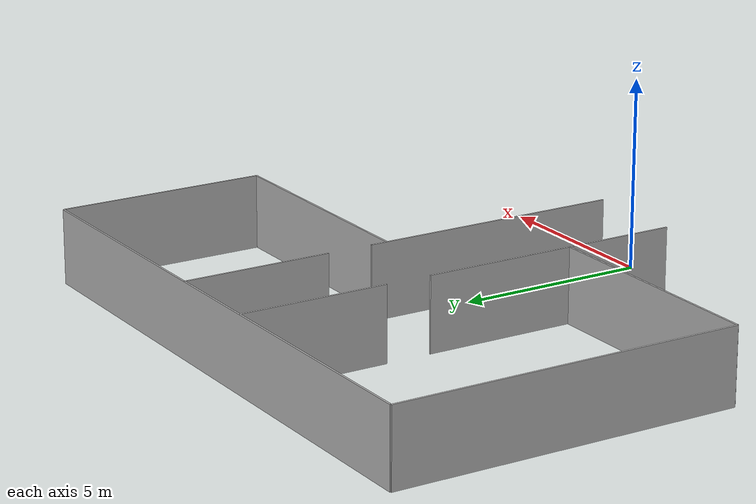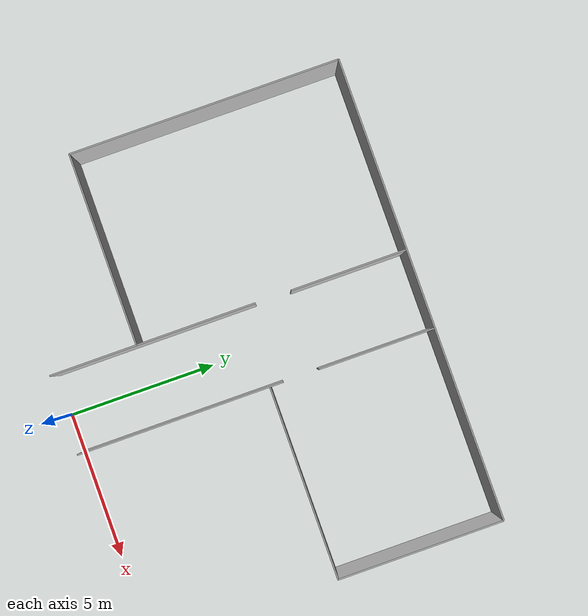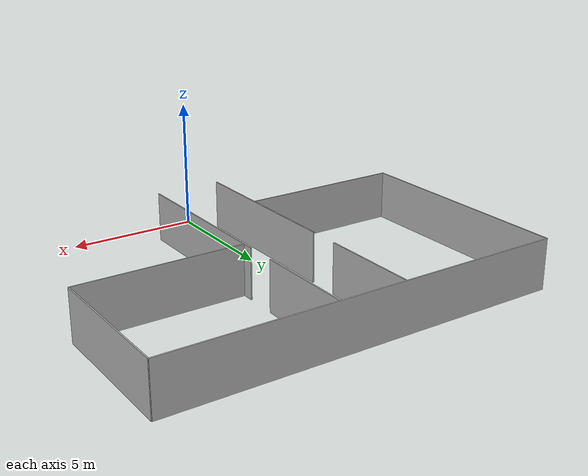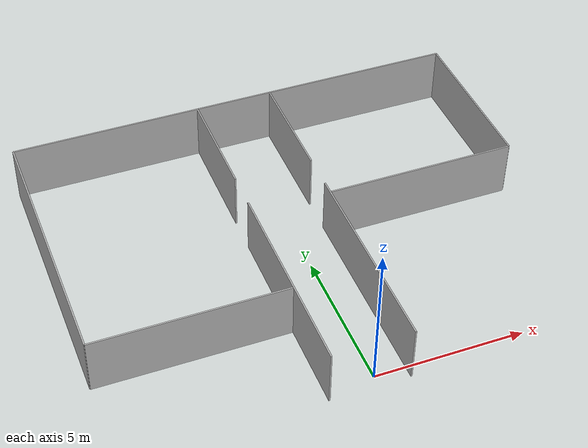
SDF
<?xml version='1.0'?>
<sdf version="1.4">
<model name="hri_apartment">
  <pose>0 0 0 0 0 0</pose>
  <static>true</static>

    <link name="wall1">
      <pose>1.2827    3.5115    .5000 0 0 0</pose>
      <inertial>
        <mass>1000.0</mass>
        <inertia> <!-- interias are tricky to compute -->
          <!-- http://answers.gazebosim.org/question/4372/the-inertia-matrix-explained/ -->
          <ixx>0.083</ixx>       <!-- for a box: ixx = 0.083 * mass * (y*y + z*z) -->
          <ixy>0.0</ixy>         <!-- for a box: ixy = 0 -->
          <ixz>0.0</ixz>         <!-- for a box: ixz = 0 -->
          <iyy>0.083</iyy>       <!-- for a box: iyy = 0.083 * mass * (x*x + z*z) -->
          <iyz>0.0</iyz>         <!-- for a box: iyz = 0 -->
          <izz>0.083</izz>       <!-- for a box: izz = 0.083 * mass * (x*x + y*y) -->
        </inertia>
      </inertial>
      <collision name="collision">
        <geometry>
          <box>
            <size>0.0500    7.0231    2.0000</size>
          </box>
        </geometry>
      </collision>
      <visual name="visual">
        <geometry>
          <box>
            <size>0.0500    7.0231    2.0000</size>
          </box>
        </geometry>
      </visual>
    </link>

    <link name="wall2">
      <pose>-1.4097    3.5115    0.5000 0 0 0</pose>
      <inertial>
        <mass>1000.0</mass>
        <inertia> <!-- interias are tricky to compute -->
          <!-- http://answers.gazebosim.org/question/4372/the-inertia-matrix-explained/ -->
          <ixx>0.083</ixx>       <!-- for a box: ixx = 0.083 * mass * (y*y + z*z) -->
          <ixy>0.0</ixy>         <!-- for a box: ixy = 0 -->
          <ixz>0.0</ixz>         <!-- for a box: ixz = 0 -->
          <iyy>0.083</iyy>       <!-- for a box: iyy = 0.083 * mass * (x*x + z*z) -->
          <iyz>0.0</iyz>         <!-- for a box: iyz = 0 -->
          <izz>0.083</izz>       <!-- for a box: izz = 0.083 * mass * (x*x + y*y) -->
        </inertia>
      </inertial>
      <collision name="collision">
        <geometry>
          <box>
            <size>0.0500    7.0231    2.0000</size>
          </box>
        </geometry>
      </collision>
      <visual name="visual">
        <geometry>
          <box>
            <size>0.0500    7.0231    2.0000</size>
          </box>
        </geometry>
      </visual>
    </link>

    <link name="wall3">
      <pose>1.2827   10.2235    0.5000 0 0 0</pose>
      <inertial>
        <mass>1000.0</mass>
        <inertia> <!-- interias are tricky to compute -->
          <!-- http://answers.gazebosim.org/question/4372/the-inertia-matrix-explained/ -->
          <ixx>0.083</ixx>       <!-- for a box: ixx = 0.083 * mass * (y*y + z*z) -->
          <ixy>0.0</ixy>         <!-- for a box: ixy = 0 -->
          <ixz>0.0</ixz>         <!-- for a box: ixz = 0 -->
          <iyy>0.083</iyy>       <!-- for a box: iyy = 0.083 * mass * (x*x + z*z) -->
          <iyz>0.0</iyz>         <!-- for a box: iyz = 0 -->
          <izz>0.083</izz>       <!-- for a box: izz = 0.083 * mass * (x*x + y*y) -->
        </inertia>
      </inertial>
      <collision name="collision">
        <geometry>
          <box>
            <size>0.0500    3.9624    2.0000</size>
          </box>
        </geometry>
      </collision>
      <visual name="visual">
        <geometry>
          <box>
            <size>0.0500    3.9624    2.0000</size>
          </box>
        </geometry>
      </visual>
    </link>

    <link name="wall4">
      <pose>-1.4097   10.2235    0.5000 0 0 0</pose>
      <inertial>
        <mass>1000.0</mass>
        <inertia> <!-- interias are tricky to compute -->
          <!-- http://answers.gazebosim.org/question/4372/the-inertia-matrix-explained/ -->
          <ixx>0.083</ixx>       <!-- for a box: ixx = 0.083 * mass * (y*y + z*z) -->
          <ixy>0.0</ixy>         <!-- for a box: ixy = 0 -->
          <ixz>0.0</ixz>         <!-- for a box: ixz = 0 -->
          <iyy>0.083</iyy>       <!-- for a box: iyy = 0.083 * mass * (x*x + z*z) -->
          <iyz>0.0</iyz>         <!-- for a box: iyz = 0 -->
          <izz>0.083</izz>       <!-- for a box: izz = 0.083 * mass * (x*x + y*y) -->
        </inertia>
      </inertial>
      <collision name="collision">
        <geometry>
          <box>
            <size>0.0500    3.9624    2.0000</size>
          </box>
        </geometry>
      </collision>
      <visual name="visual">
        <geometry>
          <box>
            <size>0.0500    3.9624    2.0000</size>
          </box>
        </geometry>
      </visual>
    </link>

    <link name="wall5">
      <pose>-0.0635   12.2047    0.5000 0 0 0</pose>
      <inertial>
        <mass>1000.0</mass>
        <inertia> <!-- interias are tricky to compute -->
          <!-- http://answers.gazebosim.org/question/4372/the-inertia-matrix-explained/ -->
          <ixx>0.083</ixx>       <!-- for a box: ixx = 0.083 * mass * (y*y + z*z) -->
          <ixy>0.0</ixy>         <!-- for a box: ixy = 0 -->
          <ixz>0.0</ixz>         <!-- for a box: ixz = 0 -->
          <iyy>0.083</iyy>       <!-- for a box: iyy = 0.083 * mass * (x*x + z*z) -->
          <iyz>0.0</iyz>         <!-- for a box: iyz = 0 -->
          <izz>0.083</izz>       <!-- for a box: izz = 0.083 * mass * (x*x + y*y) -->
        </inertia>
      </inertial>
      <collision name="collision">
        <geometry>
          <box>
            <size>15.7988    0.0500    2.0000</size>
          </box>
        </geometry>
      </collision>
      <visual name="visual">
        <geometry>
          <box>
            <size>15.7988    0.0500    2.0000</size>
          </box>
        </geometry>
      </visual>
    </link>

    <link name="wall6">
      <pose>-7.9629    7.5819    0.5000 0 0 0</pose>
      <inertial>
        <mass>1000.0</mass>
        <inertia> <!-- interias are tricky to compute -->
          <!-- http://answers.gazebosim.org/question/4372/the-inertia-matrix-explained/ -->
          <ixx>0.083</ixx>       <!-- for a box: ixx = 0.083 * mass * (y*y + z*z) -->
          <ixy>0.0</ixy>         <!-- for a box: ixy = 0 -->
          <ixz>0.0</ixz>         <!-- for a box: ixz = 0 -->
          <iyy>0.083</iyy>       <!-- for a box: iyy = 0.083 * mass * (x*x + z*z) -->
          <iyz>0.0</iyz>         <!-- for a box: iyz = 0 -->
          <izz>0.083</izz>       <!-- for a box: izz = 0.083 * mass * (x*x + y*y) -->
        </inertia>
      </inertial>
      <collision name="collision">
        <geometry>
          <box>
            <size>0.0500    9.2456    2.0000</size>
          </box>
        </geometry>
      </collision>
      <visual name="visual">
        <geometry>
          <box>
            <size>0.0500    9.2456    2.0000</size>
          </box>
        </geometry>
      </visual>
    </link>

    <link name="wall7">
      <pose>-4.6863    2.9591    0.5000 0 0 0</pose>
      <inertial>
        <mass>1000.0</mass>
        <inertia> <!-- interias are tricky to compute -->
          <!-- http://answers.gazebosim.org/question/4372/the-inertia-matrix-explained/ -->
          <ixx>0.083</ixx>       <!-- for a box: ixx = 0.083 * mass * (y*y + z*z) -->
          <ixy>0.0</ixy>         <!-- for a box: ixy = 0 -->
          <ixz>0.0</ixz>         <!-- for a box: ixz = 0 -->
          <iyy>0.083</iyy>       <!-- for a box: iyy = 0.083 * mass * (x*x + z*z) -->
          <iyz>0.0</iyz>         <!-- for a box: iyz = 0 -->
          <izz>0.083</izz>       <!-- for a box: izz = 0.083 * mass * (x*x + y*y) -->
        </inertia>
      </inertial>
      <collision name="collision">
        <geometry>
          <box>
            <size>6.5532    0.0500    2.0000</size>
          </box>
        </geometry>
      </collision>
      <visual name="visual">
        <geometry>
          <box>
            <size>6.5532    0.0500    2.0000</size>
          </box>
        </geometry>
      </visual>
    </link>

    <link name="wall8">
      <pose>4.5593    6.5659    0.5000 0 0 0</pose>
      <inertial>
        <mass>1000.0</mass>
        <inertia> <!-- interias are tricky to compute -->
          <!-- http://answers.gazebosim.org/question/4372/the-inertia-matrix-explained/ -->
          <ixx>0.083</ixx>       <!-- for a box: ixx = 0.083 * mass * (y*y + z*z) -->
          <ixy>0.0</ixy>         <!-- for a box: ixy = 0 -->
          <ixz>0.0</ixz>         <!-- for a box: ixz = 0 -->
          <iyy>0.083</iyy>       <!-- for a box: iyy = 0.083 * mass * (x*x + z*z) -->
          <iyz>0.0</iyz>         <!-- for a box: iyz = 0 -->
          <izz>0.083</izz>       <!-- for a box: izz = 0.083 * mass * (x*x + y*y) -->
        </inertia>
      </inertial>
      <collision name="collision">
        <geometry>
          <box>
            <size>6.5532    0.0500    2.0000</size>
          </box>
        </geometry>
      </collision>
      <visual name="visual">
        <geometry>
          <box>
            <size>6.5532    0.0500    2.0000</size>
          </box>
        </geometry>
      </visual>
    </link>

    <link name="wall9">
      <pose>7.8359    9.3853    0.5000 0 0 0</pose>
      <inertial>
        <mass>1000.0</mass>
        <inertia> <!-- interias are tricky to compute -->
          <!-- http://answers.gazebosim.org/question/4372/the-inertia-matrix-explained/ -->
          <ixx>0.083</ixx>       <!-- for a box: ixx = 0.083 * mass * (y*y + z*z) -->
          <ixy>0.0</ixy>         <!-- for a box: ixy = 0 -->
          <ixz>0.0</ixz>         <!-- for a box: ixz = 0 -->
          <iyy>0.083</iyy>       <!-- for a box: iyy = 0.083 * mass * (x*x + z*z) -->
          <iyz>0.0</iyz>         <!-- for a box: iyz = 0 -->
          <izz>0.083</izz>       <!-- for a box: izz = 0.083 * mass * (x*x + y*y) -->
        </inertia>
      </inertial>
      <collision name="collision">
        <geometry>
          <box>
            <size>0.0500    5.6388    2.0000</size>
          </box>
        </geometry>
      </collision>
      <visual name="visual">
        <geometry>
          <box>
            <size>0.0500    5.6388    2.0000</size>
          </box>
        </geometry>
      </visual>
    </link>

  </model>
</sdf>
